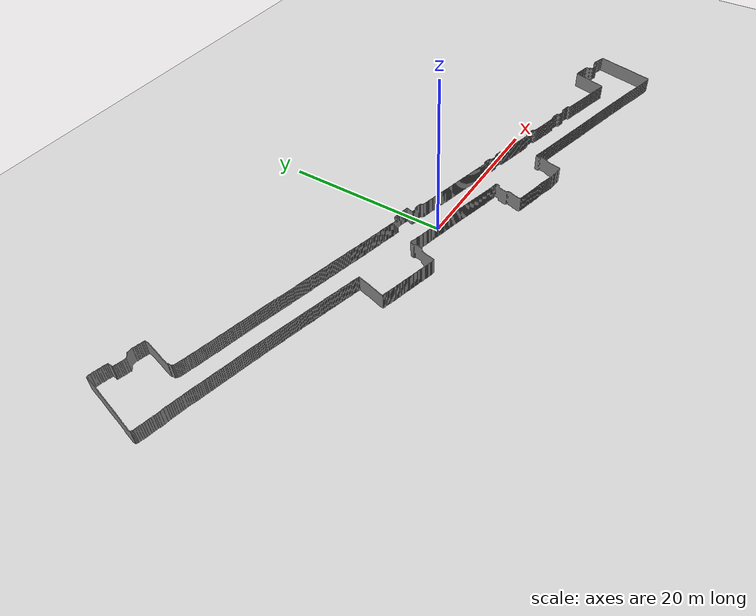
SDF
<?xml version="1.0" ?>
<sdf version="1.8">
  <world name="htifull_world">
    <physics name="1ms" type="ode">
      <max_step_size>0.003</max_step_size>
      <real_time_factor>1.0</real_time_factor>
    </physics>
    <plugin filename="gz-sim-physics-system" name="gz::sim::systems::Physics"/>
    <plugin filename="gz-sim-scene-broadcaster-system" name="gz::sim::systems::SceneBroadcaster"/>
    <plugin filename="gz-sim-sensors-system" name="gz::sim::systems::Sensors">
      <render_engine>ogre2</render_engine>
    </plugin>
    <plugin filename="gz-sim-user-commands-system" name="gz::sim::systems::UserCommands"/>
    <light type="directional" name="sun">
      <cast_shadows>false</cast_shadows>
      <pose>0 0 10 0 0 0</pose>
      <diffuse>0.8 0.8 0.8 1</diffuse>
      <specular>0.2 0.2 0.2 1</specular>
      <direction>-0.5 0.1 -0.9</direction>
    </light>
    <model name="ground_plane">
      <static>true</static>
      <link name="link">
        <collision name="collision">
          <geometry>
            <plane>
              <normal>0 0 1</normal>
              <size>100 100</size>
            </plane>
          </geometry>
        </collision>
        <visual name="visual">
          <geometry>
            <plane>
              <normal>0 0 1</normal>
              <size>100 100</size>
            </plane>
          </geometry>
          <material>
            <ambient>0.8 0.8 0.8 1</ambient>
            <diffuse>0.8 0.8 0.8 1</diffuse>
          </material>
        </visual>
      </link>
    </model>
    <model name="htifull_map">
      <static>true</static>
      <pose>0 0 1.94 3.14 0 0</pose>
      <link name="link">
        <collision name="collision">
          <geometry>
            <mesh>
              <uri>/root/ros2_ws/src/nafy_controller/worlds/HTIFULL.stl</uri>
            </mesh>
          </geometry>
        </collision>
        <visual name="visual">
          <geometry>
            <mesh>
              <uri>/root/ros2_ws/src/nafy_controller/worlds/HTIFULL.stl</uri>
            </mesh>
          </geometry>
          <material>
            <ambient>0.5 0.5 0.5 1</ambient>
            <diffuse>0.7 0.7 0.7 1</diffuse>
          </material>
        </visual>
      </link>
    </model>
  </world>
</sdf>
